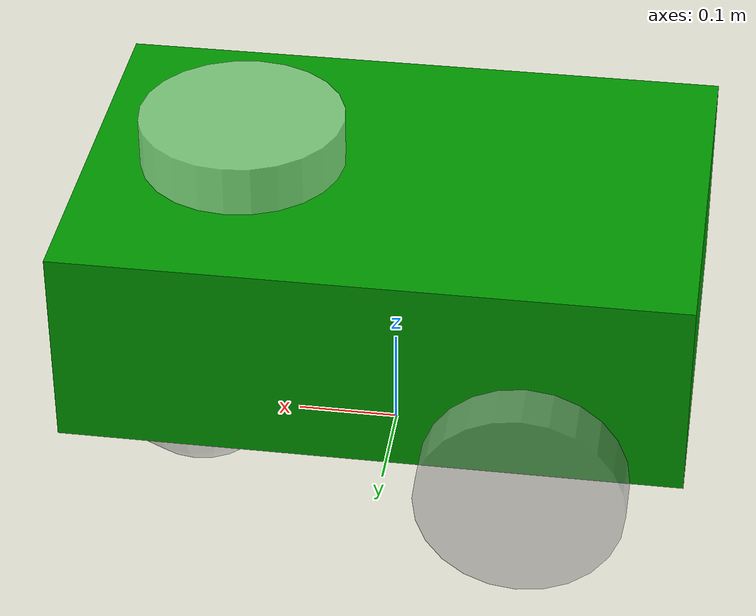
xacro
<?xml version="1.0"?>
<robot name="my_robot" xmlns:xacro="http://www.ros.org/wiki/xacro">
 <xacro:property name="base_length" value="0.6" />
 <xacro:property name="base_width" value="0.2" />
 <xacro:property name="base_height" value="0.1" />
 <xacro:property name="wheel_radius" value="0.1" />
 <xacro:property name="wheel_length" value="0.05" />

 <xacro:macro name="box_inertia" params="mass lx ly lz xyz rpy">
   <inertial>
    <origin xyz="${xyz}" rpy="${rpy}" />
    <mass value="${mass}" />
    <inertia ixx="${(mass / 12.0) * (ly * ly + lz * lz)}" ixy="0" ixz="0"
iyy="${(mass / 12.0) * (lx * lx + lz * lz)}" iyz="0"
izz="${(mass / 12.0) * (lx * lx + ly * ly)}" />
   </inertial>
 </xacro:macro>

 <xacro:macro name="cylinder_inertia" params="mass radius height xyz rpy">
   <inertial>
    <origin xyz="${xyz}" rpy="${rpy}" />
    <mass value="${mass}" />
    <inertia
      ixx="${(mass / 12.0) * (3 * radius * radius + height * height)}"
      iyy="${(mass / 12.0) * (3 * radius * radius + height * height)}"
      izz="${(mass / 2.0) * (radius * radius)}"
      ixy="0"
      ixz="0"
      iyz="0" />
   </inertial>
 </xacro:macro>

 <xacro:macro name="sphere_inertia" params="mass radius xyz rpy">
   <inertial>
    <origin xyz="${xyz}" rpy="${rpy}" />
    <mass value="${mass}" />
    <inertia
      ixx="${(2.0/5.0) * mass * (radius * radius)}"
      ixy="0"
      ixz="0"
      iyy="${(2.0/5.0) * mass * (radius * radius)}"
      iyz="0"
      izz="${(2.0/5.0) * mass * (radius * radius)}" />
   </inertial>
 </xacro:macro>

 <material name="green">
   <color rgba= "0 0.6 0 1"/>
 </material>
 <material name="white">
   <color rgba= "1 1 1 0.5"/>
 </material>
 <material name="gray">
   <color rgba= "0.7 0.7 0.7 0.5"/>
 </material>

 <link name="base_link">
   <visual>
    <geometry>
      <box size="${base_length} 0.4 0.2" />
    </geometry>
    <origin xyz="0 0 ${base_height}" rpy="0 0 0" />
    <material name="green"/>
   </visual>

   <collision>
    <geometry>
      <box size="${base_length} 0.4 0.2" />
    </geometry>
    <origin xyz="0 0 ${base_height}" rpy="0 0 0" />
   </collision>

   <xacro:box_inertia mass="5.0" lx="${base_length}" ly="${base_width}"
lz="${base_height}" xyz="0 0 ${base_height / 2.0}" rpy="0 0 0" />
 </link>

 <link name="lidar">
   <visual>
    <geometry>
      <cylinder radius="0.1" length="0.05" />
    </geometry>
    <origin xyz="0 0 0" rpy="0 0 0" />
    <material name="white"/>
   </visual>

   <collision>
    <geometry>
      <cylinder radius="0.1" length="0.05" />
    </geometry>
    <origin xyz="0 0 0" rpy="0 0 0" />
   </collision>
   <xacro:cylinder_inertia mass="1.0" height="0.05" radius="0.1" xyz="0 0 0" rpy="0 0 0"/>
 </link>

 <joint name="base_lidar_joint" type="fixed">
  <parent link="base_link"/>
  <child link="lidar"/>
  <origin xyz="0.15 0 0.225" rpy="0 0 0"/>
 </joint>

 <link name="left_wheel">
   <visual>
    <geometry>
      <cylinder radius="${wheel_radius}" length="${wheel_length}" />
    </geometry>
    <origin xyz="0 0 ${wheel_length/2.0}" rpy="0 0 0" />
    <material name="gray"/>
   </visual>
   <collision>
    <geometry>
      <cylinder radius="${wheel_radius}" length="${wheel_length}" />
    </geometry>
    <origin xyz="0 0 ${wheel_length/2.0}" rpy="0 0 0" />
   </collision>

   <xacro:cylinder_inertia mass="1.0" height="${wheel_length}" radius="${wheel_radius}" xyz="0 0 ${wheel_length/2.0}" rpy="0 0 0"/>
 </link>

 <joint name="base_left_wheel_joint" type="continuous">
  <parent link="base_link"/>
  <child link="left_wheel"/>
  <origin xyz="${-base_length/4.0} ${base_width} 0" rpy="${-pi/2.0} 0 0"/>
  <axis xyz="0 0 1"/>
 </joint>

 <link name="right_wheel">
   <visual>
    <geometry>
      <cylinder radius="${wheel_radius}" length="${wheel_length}" />
    </geometry>
    <origin xyz="0 0 ${wheel_length/2.0}" rpy="0 0 0" />
    <material name="gray"/>
   </visual>
   <collision>
    <geometry>
      <cylinder radius="${wheel_radius}" length="${wheel_length}" />
    </geometry>
    <origin xyz="0 0 ${wheel_length/2.0}" rpy="0 0 0" />
   </collision>

   <xacro:cylinder_inertia mass="1.0" height="${wheel_length}" radius="${wheel_radius}" xyz="0 0 ${wheel_length/2.0}" rpy="0 0 0"/>
 </link>

 <joint name="base_right_wheel_joint" type="continuous">
   <parent link="base_link"/>
   <child link="right_wheel"/>
   <origin xyz="${-base_length/4.0} ${-base_width} 0" rpy="${pi / 2.0} 0 0"/>
   <axis xyz="0 0 1"/>
 </joint>

 <link name="caster_wheel">
   <visual>
    <geometry>
      <sphere radius="${wheel_radius}" />
    </geometry>
    <origin xyz="0 0 0" rpy="0 0 0" />
    <material name="gray" />
   </visual>
   <collision>
    <geometry>
      <sphere radius="${wheel_radius}" />
    </geometry>
    <origin xyz="0 0 0" rpy="0 0 0" />
   </collision>

   <xacro:sphere_inertia mass="2.0" radius="0.05" xyz="0 0 0" rpy="0 0 0"/>
 </link>

 <joint name="base_caster_wheel_joint" type="fixed">
   <parent link="base_link"/>
   <child link="caster_wheel"/>
   <origin xyz="${base_length/3.0} 0 ${-wheel_radius/2.0}" rpy="0 0 0" />
 </joint>

 <link name="base_footprint" />
<!--Materials  -->
 <joint name="base_joint" type="fixed">
   <parent link="base_footprint"/>
   <child link="base_link"/>
   <origin xyz="0 0 0.1" rpy="0 0 0" />
 </joint>
 <gazebo reference="base_link">
   <material>Gazebo/Green</material>
 </gazebo>
 <gazebo reference="lidar">
   <material>Gazebo/White</material>
 </gazebo>
 <gazebo reference="left_wheel">
   <material>Gazebo/ZincYellow</material>
 </gazebo>
 <gazebo reference="right_wheel">
   <material>Gazebo/ZincYellow</material>
 </gazebo>
 <gazebo reference="caster_wheel">
   <material>Gazebo/ZincYellow</material>
 </gazebo>
<!--Plugins  -->
 <gazebo>
  <plugin name="diff_drive_controller" filename="libgazebo_ros_diff_drive.so">

    <!-- Update rate in Hz -->
    <update_rate>50</update_rate>

    <!-- wheels -->
    <left_joint>base_left_wheel_joint</left_joint>
    <right_joint>base_right_wheel_joint</right_joint>

    <!-- kinematics -->
    <wheel_separation>0.4</wheel_separation>
    <wheel_diameter>0.2</wheel_diameter>

    <!-- output -->
    <publish_odom>true</publish_odom>
    <publish_odom_tf>true</publish_odom_tf>
    <publish_wheel_tf>true</publish_wheel_tf>

    <odometry_topic>odom</odometry_topic>
    <odometry_frame>odom</odometry_frame>
    <robot_base_frame>base_footprint</robot_base_frame>

    <!-- input -->
    <command_topic>cmd_vel</command_topic>

  </plugin>
</gazebo>
</robot>
